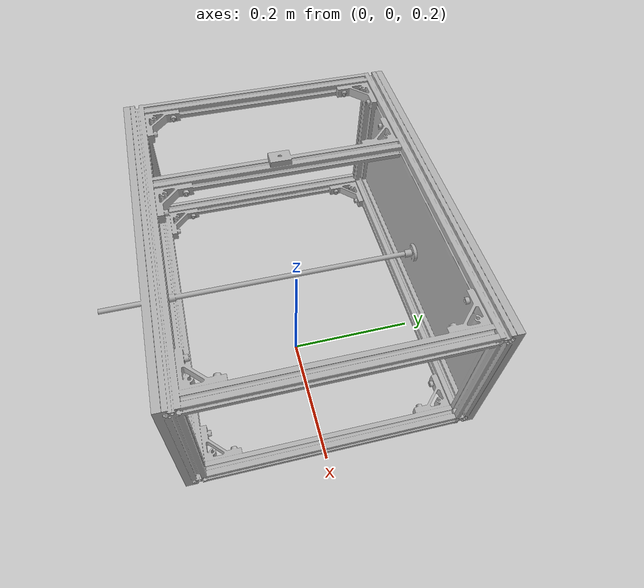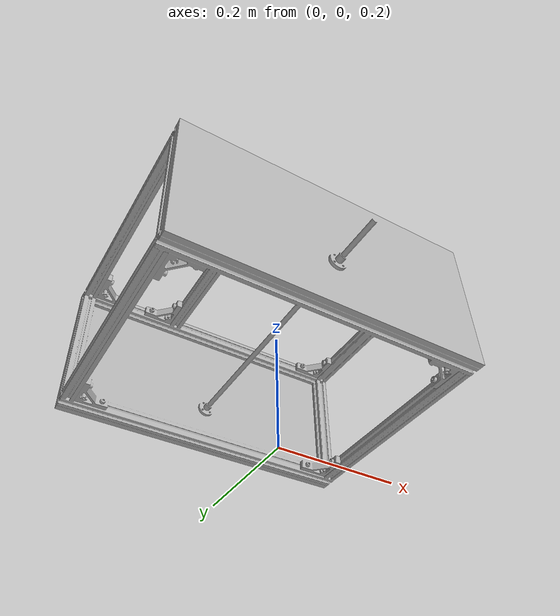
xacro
<?xml version="1.0" ?>
<robot name="unit1" xmlns:xacro="http://www.ros.org/wiki/xacro">

<xacro:include filename="$(find unit1_description)/urdf/materials.xacro" />
<xacro:include filename="$(find unit1_description)/urdf/unit1.trans" />
<xacro:include filename="$(find unit1_description)/urdf/unit1.gazebo" />
<link name="base_link">
  <inertial>
    <origin xyz="-0.029426198213460805 0.0009200100813506006 0.4180633145364752" rpy="0 0 0"/>
    <mass value="26.74575076788134"/>
    <inertia ixx="1.125473" iyy="0.848502" izz="1.628344" ixy="0.000296" iyz="0.000478" ixz="0.004619"/>
  </inertial>
  <visual>
    <origin xyz="0 0 0" rpy="0 0 0"/>
    <geometry>
      <mesh filename="file://$(find unit1_description)/meshes/base_link.stl" scale="0.001 0.001 0.001"/>
    </geometry>
    <material name="silver"/>
  </visual>
  <collision>
    <origin xyz="0 0 0" rpy="0 0 0"/>
    <geometry>
      <mesh filename="file://$(find unit1_description)/meshes/base_link.stl" scale="0.001 0.001 0.001"/>
    </geometry>
  </collision>
</link>

</robot>

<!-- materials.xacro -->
<robot name="unit1" xmlns:xacro="http://www.ros.org/wiki/xacro" >

<material name="silver">
  <color rgba="0.700 0.700 0.700 1.000"/>
</material>

</robot>

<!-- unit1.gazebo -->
<robot name="unit1" xmlns:xacro="http://www.ros.org/wiki/xacro" >

<xacro:property name="body_color" value="Gazebo/Silver" />

<gazebo>
  <plugin name="control" filename="libgazebo_ros_control.so"/>
</gazebo>
<gazebo reference="base_link">
  <material>${body_color}</material>
  <mu1>0.2</mu1>
  <mu2>0.2</mu2>
  <self_collide>true</self_collide>
  <gravity>true</gravity>
</gazebo>

</robot>
